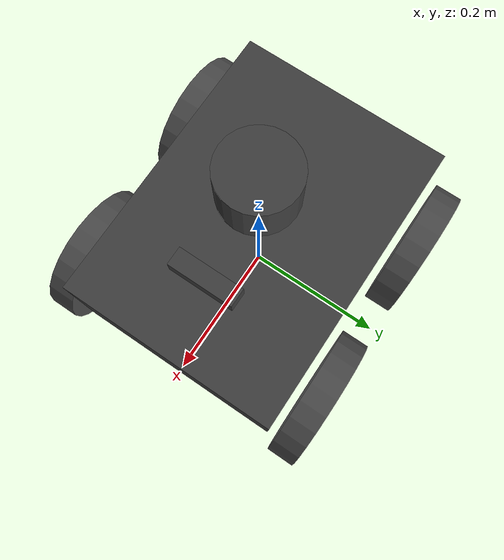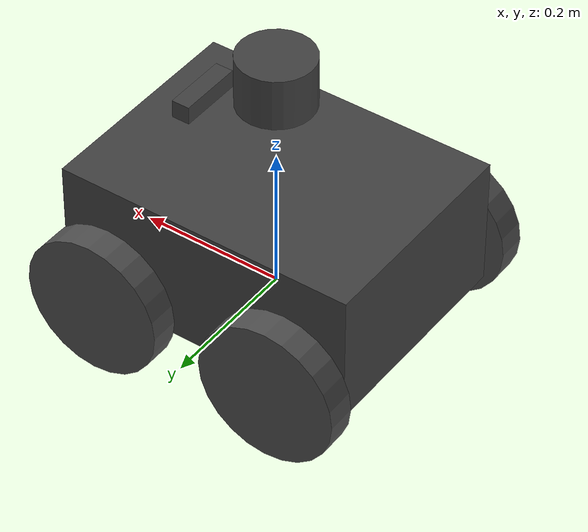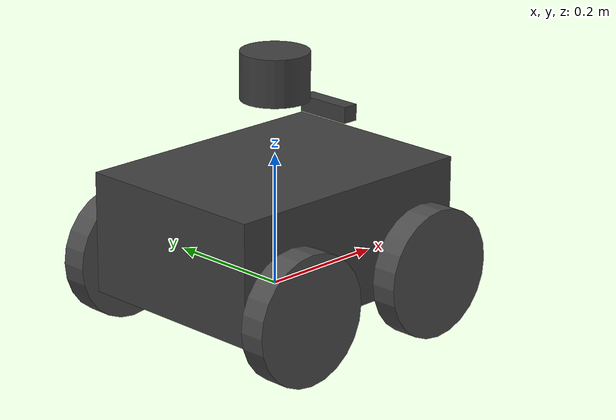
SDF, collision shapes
<?xml version='1.0' encoding='utf-8'?>
<sdf version="1.11">
  <model name="j100-0000">
    <link name="base_link">
      <inertial>
        <pose>0.01182835512732278 0.001967538426244551 0.079919792383574217 0 0 0</pose>
        <mass>17.436</mass>
        <inertia>
          <ixx>0.37153717145639781</ixx>
          <ixy>-0.00093012444900206475</ixy>
          <ixz>0.017635173245354439</ixz>
          <iyy>0.44755479625087352</iyy>
          <iyz>-0.00068294360248910254</iyz>
          <izz>0.45432553544797433</izz>
        </inertia>
      </inertial>
      <collision name="base_link_fixed_joint_lump__chassis_link_collision">
        <pose>0 0 0.091999999999999998 0 0 0</pose>
        <geometry>
          <box>
            <size>0.41999999999999998 0.31 0.184</size>
          </box>
        </geometry>
      </collision>
      <collision name="base_link_fixed_joint_lump__camera_0_link_collision_1">
        <pose>0.1106 0 0.2465 0 0 0</pose>
        <geometry>
          <box>
            <size>0.025049999999999999 0.089999999999999997 0.025000000000000001</size>
          </box>
        </geometry>
        <surface>
          <contact>
            <ode />
          </contact>
          <friction>
            <ode />
          </friction>
        </surface>
      </collision>
      <collision name="base_link_fixed_joint_lump__lidar3d_0_link_collision_2">
        <pose>0 0 0.31985000000000002 0 0 0</pose>
        <geometry>
          <cylinder>
            <length>0.0717</length>
            <radius>0.0516</radius>
          </cylinder>
        </geometry>
      </collision>
      <visual name="base_link_fixed_joint_lump__chassis_link_visual">
        <pose>0 0 -0.065500000000000003 1.5707963267948959 -5.5511151231257827e-17 1.5707963267948959</pose>
        <geometry>
          <mesh>
            <scale>1 1 1</scale>
            <uri>model://clearpath_platform_description/meshes/j100/j100_base.stl</uri>
          </mesh>
        </geometry>
        <material>
          <diffuse>0.25 0.25 0.25 1</diffuse>
          <ambient>0.25 0.25 0.25 1</ambient>
        </material>
      </visual>
      <visual name="base_link_fixed_joint_lump__top_plate_link_visual_1">
        <pose>0 0 0.184 0 0 0</pose>
        <geometry>
          <mesh>
            <scale>1 1 1</scale>
            <uri>model://clearpath_platform_description/meshes/j100/attachments/ark_enclosure.stl</uri>
          </mesh>
        </geometry>
        <material>
          <diffuse>0.25 0.25 0.25 1</diffuse>
          <ambient>0.25 0.25 0.25 1</ambient>
        </material>
      </visual>
      <visual name="base_link_fixed_joint_lump__camera_0_link_visual_2">
        <pose>0.1149 0 0.2465 1.5707963267948959 -5.5511151231257827e-17 1.5707963267948959</pose>
        <geometry>
          <mesh>
            <scale>1 1 1</scale>
            <uri>file:///opt/ros/jazzy/share/realsense2_description/meshes/d435.dae</uri>
          </mesh>
        </geometry>
      </visual>
      <visual name="base_link_fixed_joint_lump__lidar3d_0_link_visual_3">
        <pose>0 0 0.28399999999999997 0 0 0</pose>
        <geometry>
          <mesh>
            <scale>1 1 1</scale>
            <uri>model://velodyne_description/meshes/VLP16_base_1.dae</uri>
          </mesh>
        </geometry>
      </visual>
      <visual name="base_link_fixed_joint_lump__lidar3d_0_link_visual_4">
        <pose>0 0 0.28399999999999997 0 0 0</pose>
        <geometry>
          <mesh>
            <scale>1 1 1</scale>
            <uri>model://velodyne_description/meshes/VLP16_base_2.dae</uri>
          </mesh>
        </geometry>
      </visual>
      <visual name="base_link_fixed_joint_lump__lidar3d_0_laser_visual_5">
        <pose>0 0 0.28399999999999997 0 0 0</pose>
        <geometry>
          <mesh>
            <scale>1 1 1</scale>
            <uri>model://velodyne_description/meshes/VLP16_scan.dae</uri>
          </mesh>
        </geometry>
      </visual>
      <visual name="base_link_fixed_joint_lump__gps_0_link_visual_6">
        <pose>-0.17999999999999999 0.126 0.1895 0 0 0</pose>
        <geometry>
          <cylinder>
            <length>0.016</length>
            <radius>0.025999999999999999</radius>
          </cylinder>
        </geometry>
        <material>
          <diffuse>0.187500015 0.187500015 0.187500015 1</diffuse>
          <ambient>0.187500015 0.187500015 0.187500015 1</ambient>
        </material>
      </visual>
      <visual name="base_link_fixed_joint_lump__front_fender_link_visual_7">
        <pose>0 0 0 0 0 0</pose>
        <geometry>
          <mesh>
            <scale>1 1 1</scale>
            <uri>model://clearpath_platform_description/meshes/j100/attachments/default_fender.stl</uri>
          </mesh>
        </geometry>
        <material>
          <diffuse>1 1 0 1</diffuse>
          <ambient>1 1 0 1</ambient>
        </material>
      </visual>
      <visual name="base_link_fixed_joint_lump__rear_fender_link_visual_8">
        <pose>0 0 0 0 0 3.1415000000000002</pose>
        <geometry>
          <mesh>
            <scale>1 1 1</scale>
            <uri>model://clearpath_platform_description/meshes/j100/attachments/default_fender.stl</uri>
          </mesh>
        </geometry>
        <material>
          <diffuse>1 1 0 1</diffuse>
          <ambient>1 1 0 1</ambient>
        </material>
      </visual>
      <sensor name="camera_0" type="rgbd_camera">
        <camera>
          <horizontal_fov>1.25</horizontal_fov>
          <image>
            <width>640</width>
            <height>480</height>
          </image>
          <clip>
            <near>0.29999999999999999</near>
            <far>100</far>
          </clip>
          <optical_frame_id>camera_0_color_optical_frame</optical_frame_id>
          <gz_frame_id>camera_0_link</gz_frame_id>
        </camera>
        <always_on>true</always_on>
        <update_rate>30</update_rate>
        <visualize>true</visualize>
        <topic>//sensors/camera_0</topic>
        <pose>0.1106 0.017500000000000002 0.2465 0 0 0</pose>
        <gz_frame_id>camera_0_link</gz_frame_id>
      </sensor>
      <sensor name="lidar3d_0" type="gpu_lidar">
        <update_rate>20</update_rate>
        <visualize>true</visualize>
        <always_on>true</always_on>
        <topic>//sensors/lidar3d_0/scan</topic>
        <lidar>
          <scan>
            <horizontal>
              <samples>900</samples>
              <resolution>1</resolution>
              <min_angle>-3.1415920000000002</min_angle>
              <max_angle>3.1415920000000002</max_angle>
            </horizontal>
            <vertical>
              <samples>15</samples>
              <resolution>1</resolution>
              <min_angle>-0.261799</min_angle>
              <max_angle>0.261799</max_angle>
            </vertical>
          </scan>
          <range>
            <min>0.90000000000000002</min>
            <max>130</max>
            <resolution>0.01</resolution>
          </range>
        </lidar>
        <pose>0 0 0.32169999999999999 0 0 0</pose>
        <gz_frame_id>lidar3d_0_laser</gz_frame_id>
      </sensor>
      <sensor name="imu_0" type="imu">
        <always_on>true</always_on>
        <update_rate>50</update_rate>
        <visualize>true</visualize>
        <topic>//sensors/imu_0/data_raw</topic>
        <pose>0 0 0 0 0 0</pose>
        <gz_frame_id>imu_0_link</gz_frame_id>
        <imu />
      </sensor>
      <sensor name="gps_0" type="navsat">
        <always_on>true</always_on>
        <update_rate>10</update_rate>
        <topic>//sensors/gps_0/navsat</topic>
        <pose>-0.17999999999999999 0.126 0.18149999999999999 0 0 0</pose>
        <gz_frame_id>gps_0_link</gz_frame_id>
        <gps />
      </sensor>
    <sensor name="simulation_contact_0" type="contact"><always_on>true</always_on><update_rate>20</update_rate><topic>/world/virtual_maize_field/model/robot/link/base_link/sensor/simulation_contact_0/contact</topic><contact><collision>base_link_fixed_joint_lump__chassis_link_collision</collision></contact></sensor><sensor name="simulation_contact_1" type="contact"><always_on>true</always_on><update_rate>20</update_rate><topic>/world/virtual_maize_field/model/robot/link/base_link/sensor/simulation_contact_1/contact</topic><contact><collision>base_link_fixed_joint_lump__camera_0_link_collision_1</collision></contact></sensor><sensor name="simulation_contact_2" type="contact"><always_on>true</always_on><update_rate>20</update_rate><topic>/world/virtual_maize_field/model/robot/link/base_link/sensor/simulation_contact_2/contact</topic><contact><collision>base_link_fixed_joint_lump__lidar3d_0_link_collision_2</collision></contact></sensor></link>
    <joint name="front_left_wheel_joint" type="revolute">
      <pose relative_to="base_link">0.13100000000000001 0.18779499999999999 0.034500000000000003 0 0 0</pose>
      <parent>base_link</parent>
      <child>front_left_wheel_link</child>
      <axis>
        <xyz>0 1 0</xyz>
        <limit>
          <lower>-inf</lower>
          <upper>inf</upper>
        </limit>
        <dynamics>
          <spring_reference>0</spring_reference>
          <spring_stiffness>0</spring_stiffness>
        </dynamics>
      </axis>
    </joint>
    <link name="front_left_wheel_link">
      <pose relative_to="front_left_wheel_joint">0 0 0 0 0 0</pose>
      <inertial>
        <pose>0 0 0 0 0 0</pose>
        <mass>0.47699999999999998</mass>
        <inertia>
          <ixx>0.0012999999999999999</ixx>
          <ixy>0</ixy>
          <ixz>0</ixz>
          <iyy>0.0023999999999999998</iyy>
          <iyz>0</iyz>
          <izz>0.0012999999999999999</izz>
        </inertia>
      </inertial>
      <collision name="front_left_wheel_link_collision">
        <pose>0 0 0 1.5707963267948959 0 0</pose>
        <geometry>
          <cylinder>
            <length>0.040000000000000001</length>
            <radius>0.098000000000000004</radius>
          </cylinder>
        </geometry>
        <surface>
          <contact>
            <ode />
          </contact>
          <friction>
            <ode>
              <mu>0.5</mu>
              <mu2>0.5</mu2>
              <fdir1>1 0 0</fdir1>
            </ode>
          </friction>
        </surface>
      </collision>
      <visual name="front_left_wheel_link_visual">
        <pose>0 0 0 1.5707963267948959 0 0</pose>
        <geometry>
          <mesh>
            <scale>1 1 1</scale>
            <uri>model://clearpath_platform_description/meshes/j100/wheels/outdoor.stl</uri>
          </mesh>
        </geometry>
        <material>
          <script>
            <name>Gazebo/DarkGrey</name>
            <uri>file://media/materials/scripts/gazebo.material</uri>
          </script>
          <diffuse>0.187500015 0.187500015 0.187500015 1</diffuse>
          <ambient>0.187500015 0.187500015 0.187500015 1</ambient>
        </material>
      </visual>
      <self_collide>false</self_collide>
    <sensor name="simulation_contact_3" type="contact"><always_on>true</always_on><update_rate>20</update_rate><topic>/world/virtual_maize_field/model/robot/link/front_left_wheel_link/sensor/simulation_contact_3/contact</topic><contact><collision>front_left_wheel_link_collision</collision></contact></sensor></link>
    <joint name="front_right_wheel_joint" type="revolute">
      <pose relative_to="base_link">0.13100000000000001 -0.18779499999999999 0.034500000000000003 0 0 0</pose>
      <parent>base_link</parent>
      <child>front_right_wheel_link</child>
      <axis>
        <xyz>0 1 0</xyz>
        <limit>
          <lower>-inf</lower>
          <upper>inf</upper>
        </limit>
        <dynamics>
          <spring_reference>0</spring_reference>
          <spring_stiffness>0</spring_stiffness>
        </dynamics>
      </axis>
    </joint>
    <link name="front_right_wheel_link">
      <pose relative_to="front_right_wheel_joint">0 0 0 0 0 0</pose>
      <inertial>
        <pose>0 0 0 0 0 0</pose>
        <mass>0.47699999999999998</mass>
        <inertia>
          <ixx>0.0012999999999999999</ixx>
          <ixy>0</ixy>
          <ixz>0</ixz>
          <iyy>0.0023999999999999998</iyy>
          <iyz>0</iyz>
          <izz>0.0012999999999999999</izz>
        </inertia>
      </inertial>
      <collision name="front_right_wheel_link_collision">
        <pose>0 0 0 1.5707963267948959 0 0</pose>
        <geometry>
          <cylinder>
            <length>0.040000000000000001</length>
            <radius>0.098000000000000004</radius>
          </cylinder>
        </geometry>
        <surface>
          <contact>
            <ode />
          </contact>
          <friction>
            <ode>
              <mu>0.5</mu>
              <mu2>0.5</mu2>
              <fdir1>1 0 0</fdir1>
            </ode>
          </friction>
        </surface>
      </collision>
      <visual name="front_right_wheel_link_visual">
        <pose>0 0 0 1.5707963267948959 0 0</pose>
        <geometry>
          <mesh>
            <scale>1 1 1</scale>
            <uri>model://clearpath_platform_description/meshes/j100/wheels/outdoor.stl</uri>
          </mesh>
        </geometry>
        <material>
          <script>
            <name>Gazebo/DarkGrey</name>
            <uri>file://media/materials/scripts/gazebo.material</uri>
          </script>
          <diffuse>0.187500015 0.187500015 0.187500015 1</diffuse>
          <ambient>0.187500015 0.187500015 0.187500015 1</ambient>
        </material>
      </visual>
      <self_collide>false</self_collide>
    <sensor name="simulation_contact_4" type="contact"><always_on>true</always_on><update_rate>20</update_rate><topic>/world/virtual_maize_field/model/robot/link/front_right_wheel_link/sensor/simulation_contact_4/contact</topic><contact><collision>front_right_wheel_link_collision</collision></contact></sensor></link>
    <joint name="rear_left_wheel_joint" type="revolute">
      <pose relative_to="base_link">-0.13100000000000001 0.18779499999999999 0.034500000000000003 0 0 0</pose>
      <parent>base_link</parent>
      <child>rear_left_wheel_link</child>
      <axis>
        <xyz>0 1 0</xyz>
        <limit>
          <lower>-inf</lower>
          <upper>inf</upper>
        </limit>
        <dynamics>
          <spring_reference>0</spring_reference>
          <spring_stiffness>0</spring_stiffness>
        </dynamics>
      </axis>
    </joint>
    <link name="rear_left_wheel_link">
      <pose relative_to="rear_left_wheel_joint">0 0 0 0 0 0</pose>
      <inertial>
        <pose>0 0 0 0 0 0</pose>
        <mass>0.47699999999999998</mass>
        <inertia>
          <ixx>0.0012999999999999999</ixx>
          <ixy>0</ixy>
          <ixz>0</ixz>
          <iyy>0.0023999999999999998</iyy>
          <iyz>0</iyz>
          <izz>0.0012999999999999999</izz>
        </inertia>
      </inertial>
      <collision name="rear_left_wheel_link_collision">
        <pose>0 0 0 1.5707963267948959 0 0</pose>
        <geometry>
          <cylinder>
            <length>0.040000000000000001</length>
            <radius>0.098000000000000004</radius>
          </cylinder>
        </geometry>
        <surface>
          <contact>
            <ode />
          </contact>
          <friction>
            <ode>
              <mu>0.5</mu>
              <mu2>0.5</mu2>
              <fdir1>1 0 0</fdir1>
            </ode>
          </friction>
        </surface>
      </collision>
      <visual name="rear_left_wheel_link_visual">
        <pose>0 0 0 1.5707963267948959 0 0</pose>
        <geometry>
          <mesh>
            <scale>1 1 1</scale>
            <uri>model://clearpath_platform_description/meshes/j100/wheels/outdoor.stl</uri>
          </mesh>
        </geometry>
        <material>
          <script>
            <name>Gazebo/DarkGrey</name>
            <uri>file://media/materials/scripts/gazebo.material</uri>
          </script>
          <diffuse>0.187500015 0.187500015 0.187500015 1</diffuse>
          <ambient>0.187500015 0.187500015 0.187500015 1</ambient>
        </material>
      </visual>
      <self_collide>false</self_collide>
    <sensor name="simulation_contact_5" type="contact"><always_on>true</always_on><update_rate>20</update_rate><topic>/world/virtual_maize_field/model/robot/link/rear_left_wheel_link/sensor/simulation_contact_5/contact</topic><contact><collision>rear_left_wheel_link_collision</collision></contact></sensor></link>
    <joint name="rear_right_wheel_joint" type="revolute">
      <pose relative_to="base_link">-0.13100000000000001 -0.18779499999999999 0.034500000000000003 0 0 0</pose>
      <parent>base_link</parent>
      <child>rear_right_wheel_link</child>
      <axis>
        <xyz>0 1 0</xyz>
        <limit>
          <lower>-inf</lower>
          <upper>inf</upper>
        </limit>
        <dynamics>
          <spring_reference>0</spring_reference>
          <spring_stiffness>0</spring_stiffness>
        </dynamics>
      </axis>
    </joint>
    <link name="rear_right_wheel_link">
      <pose relative_to="rear_right_wheel_joint">0 0 0 0 0 0</pose>
      <inertial>
        <pose>0 0 0 0 0 0</pose>
        <mass>0.47699999999999998</mass>
        <inertia>
          <ixx>0.0012999999999999999</ixx>
          <ixy>0</ixy>
          <ixz>0</ixz>
          <iyy>0.0023999999999999998</iyy>
          <iyz>0</iyz>
          <izz>0.0012999999999999999</izz>
        </inertia>
      </inertial>
      <collision name="rear_right_wheel_link_collision">
        <pose>0 0 0 1.5707963267948959 0 0</pose>
        <geometry>
          <cylinder>
            <length>0.040000000000000001</length>
            <radius>0.098000000000000004</radius>
          </cylinder>
        </geometry>
        <surface>
          <contact>
            <ode />
          </contact>
          <friction>
            <ode>
              <mu>0.5</mu>
              <mu2>0.5</mu2>
              <fdir1>1 0 0</fdir1>
            </ode>
          </friction>
        </surface>
      </collision>
      <visual name="rear_right_wheel_link_visual">
        <pose>0 0 0 1.5707963267948959 0 0</pose>
        <geometry>
          <mesh>
            <scale>1 1 1</scale>
            <uri>model://clearpath_platform_description/meshes/j100/wheels/outdoor.stl</uri>
          </mesh>
        </geometry>
        <material>
          <script>
            <name>Gazebo/DarkGrey</name>
            <uri>file://media/materials/scripts/gazebo.material</uri>
          </script>
          <diffuse>0.187500015 0.187500015 0.187500015 1</diffuse>
          <ambient>0.187500015 0.187500015 0.187500015 1</ambient>
        </material>
      </visual>
      <self_collide>false</self_collide>
    <sensor name="simulation_contact_6" type="contact"><always_on>true</always_on><update_rate>20</update_rate><topic>/world/virtual_maize_field/model/robot/link/rear_right_wheel_link/sensor/simulation_contact_6/contact</topic><contact><collision>rear_right_wheel_link_collision</collision></contact></sensor></link>
    <plugin name="gz::sim::systems::WheelSlip" filename="libgz-sim-wheel-slip-system.so">
      <wheel link_name="front_left_wheel_link">
        <slip_compliance_lateral>1.0</slip_compliance_lateral>
        <slip_compliance_longitudinal>1.0</slip_compliance_longitudinal>
        <wheel_normal_force>40</wheel_normal_force>
        <wheel_radius>0.098</wheel_radius>
      </wheel>
    </plugin>
    <plugin name="gz::sim::systems::WheelSlip" filename="libgz-sim-wheel-slip-system.so">
      <wheel link_name="front_right_wheel_link">
        <slip_compliance_lateral>1.0</slip_compliance_lateral>
        <slip_compliance_longitudinal>1.0</slip_compliance_longitudinal>
        <wheel_normal_force>40</wheel_normal_force>
        <wheel_radius>0.098</wheel_radius>
      </wheel>
    </plugin>
    <plugin name="gz::sim::systems::WheelSlip" filename="libgz-sim-wheel-slip-system.so">
      <wheel link_name="rear_left_wheel_link">
        <slip_compliance_lateral>1.0</slip_compliance_lateral>
        <slip_compliance_longitudinal>1.0</slip_compliance_longitudinal>
        <wheel_normal_force>40</wheel_normal_force>
        <wheel_radius>0.098</wheel_radius>
      </wheel>
    </plugin>
    <plugin name="gz::sim::systems::WheelSlip" filename="libgz-sim-wheel-slip-system.so">
      <wheel link_name="rear_right_wheel_link">
        <slip_compliance_lateral>1.0</slip_compliance_lateral>
        <slip_compliance_longitudinal>1.0</slip_compliance_longitudinal>
        <wheel_normal_force>40</wheel_normal_force>
        <wheel_radius>0.098</wheel_radius>
      </wheel>
    </plugin>
    <plugin name="gz_ros2_control::GazeboSimROS2ControlPlugin" filename="libgz_ros2_control-system.so">
      <parameters>/opt/greenhouse_sim/robot/jackal_j100/platform/config/control.yaml</parameters>
      <ros>
        <remapping>~/odom:=platform/odom</remapping>
        <remapping>~/cmd_vel:=platform/cmd_vel</remapping>
        <remapping>/tf:=tf</remapping>
        <remapping>/tf_static:=tf_static</remapping>
        <remapping>/diagnostics:=diagnostics</remapping>
        <remapping>/dynamic_joint_states:=platform/dynamic_joint_states</remapping>
        <remapping>joint_states:=platform/joint_states</remapping>
        <remapping>~/reference:=platform/cmd_vel</remapping>
        <remapping>~/odometry:=platform/odom</remapping>
        <namespace>/</namespace>
      </ros>
    </plugin>
    <plugin name="gz::sim::systems::PosePublisher" filename="libgz-sim-pose-publisher-system.so">
      <publish_link_pose>true</publish_link_pose>
      <publish_nested_model_pose>true</publish_nested_model_pose>
      <use_pose_vector_msg>true</use_pose_vector_msg>
      <update_frequency>50</update_frequency>
    </plugin>
    <frame name="front_0_mount_joint" attached_to="default_mount">
      <pose>0.12 0 0 0 0 0</pose>
    </frame>
    <frame name="front_0_mount" attached_to="front_0_mount_joint">
      <pose>0 0 0 0 0 0</pose>
    </frame>
    <frame name="rear_0_mount_joint" attached_to="default_mount">
      <pose>-0.12 0 0 0 0 0</pose>
    </frame>
    <frame name="rear_0_mount" attached_to="rear_0_mount_joint">
      <pose>0 0 0 0 0 0</pose>
    </frame>
    <frame name="camera_0_link_joint" attached_to="camera_0_bottom_screw_frame">
      <pose>0.0106 0.017500000000000002 0.012500000000000001 0 0 0</pose>
    </frame>
    <frame name="camera_0_link" attached_to="camera_0_link_joint">
      <pose>0 0 0 0 0 0</pose>
    </frame>
    <frame name="camera_0_joint" attached_to="top_plate_link">
      <pose>0.10000000000000001 0 0.050000000000000003 0 0 0</pose>
    </frame>
    <frame name="camera_0_bottom_screw_frame" attached_to="camera_0_joint">
      <pose>0 0 0 0 0 0</pose>
    </frame>
    <frame name="lidar3d_0_laser_joint" attached_to="lidar3d_0_link">
      <pose>0 0 0.037699999999999997 0 0 0</pose>
    </frame>
    <frame name="lidar3d_0_laser" attached_to="lidar3d_0_laser_joint">
      <pose>0 0 0 0 0 0</pose>
    </frame>
    <frame name="lidar3d_0_joint" attached_to="top_plate_link">
      <pose>0 0 0.10000000000000001 0 0 0</pose>
    </frame>
    <frame name="lidar3d_0_link" attached_to="lidar3d_0_joint">
      <pose>0 0 0 0 0 0</pose>
    </frame>
    <frame name="top_plate_joint" attached_to="default_mount">
      <pose>0 0 0 0 0 0</pose>
    </frame>
    <frame name="top_plate_link" attached_to="top_plate_joint">
      <pose>0 0 0 0 0 0</pose>
    </frame>
    <frame name="default_mount_joint" attached_to="chassis_link">
      <pose>0 0 0.184 0 0 0</pose>
    </frame>
    <frame name="default_mount" attached_to="default_mount_joint">
      <pose>0 0 0 0 0 0</pose>
    </frame>
    <frame name="imu_joint" attached_to="chassis_link">
      <pose>0 0 0 0 0 0</pose>
    </frame>
    <frame name="imu_0_link" attached_to="imu_joint">
      <pose>0 0 0 0 0 0</pose>
    </frame>
    <frame name="navsat_joint" attached_to="chassis_link">
      <pose>-0.17999999999999999 0.126 0.18149999999999999 0 0 0</pose>
    </frame>
    <frame name="gps_0_link" attached_to="navsat_joint">
      <pose>0 0 0 0 0 0</pose>
    </frame>
    <frame name="base_link_joint" attached_to="base_link">
      <pose>0 0 0 0 0 0</pose>
    </frame>
    <frame name="chassis_link" attached_to="base_link_joint">
      <pose>0 0 0 0 0 0</pose>
    </frame>
    <frame name="front_fender_joint" attached_to="base_link">
      <pose>0 0 0 0 0 0</pose>
    </frame>
    <frame name="front_fender_link" attached_to="front_fender_joint">
      <pose>0 0 0 0 0 0</pose>
    </frame>
    <frame name="rear_fender_joint" attached_to="base_link">
      <pose>0 0 0 0 0 3.1415000000000002</pose>
    </frame>
    <frame name="rear_fender_link" attached_to="rear_fender_joint">
      <pose>0 0 0 0 0 0</pose>
    </frame>
  </model>
</sdf>
